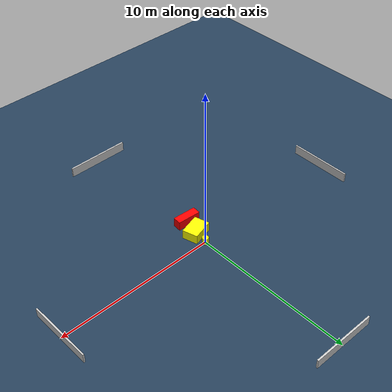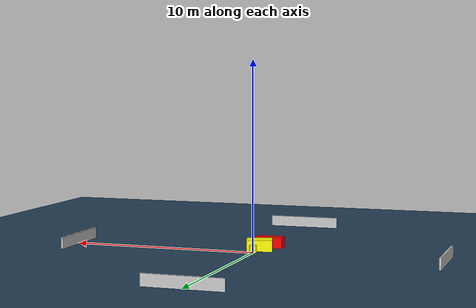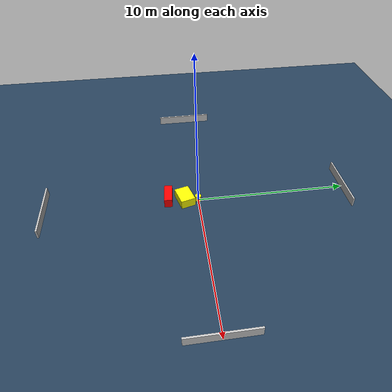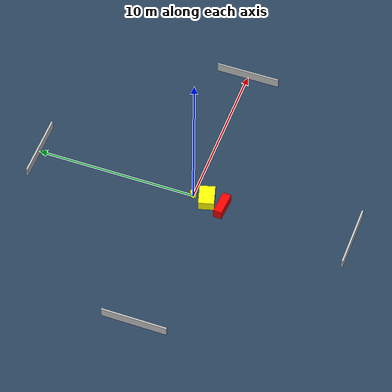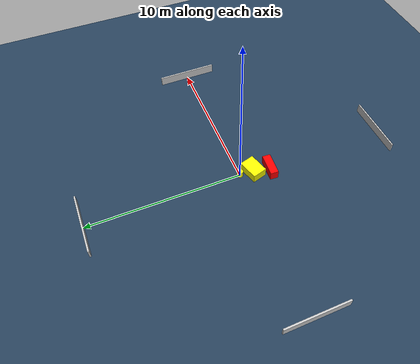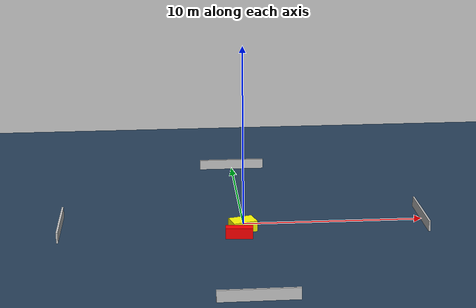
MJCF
<?xml version="1.0" ?>
<mujoco model="generated_environment">
  <option timestep="0.01" integrator="RK4" cone="elliptic"/>
  <default>
    <geom density="1"/>
  </default>
  <asset>
    <texture builtin="gradient" height="3072" name="skybox" rgb1="0.3 0.5 0.7" rgb2="0 0 0" type="skybox" width="512"/>
    <texture builtin="checker" height="300" name="groundplane" rgb1="0.2 0.3 0.4" rgb2="0.1 0.2 0.3" type="2d" width="300"/>
    <material name="groundplane" reflectance="0.2" texrepeat="5 5" texture="groundplane"/>
  </asset>
  <worldbody>
    <light dir="0 0 -1" directional="true" pos="0 0 1.5"/>
    <geom condim="3" friction="0.5 0.005 0.001" material="groundplane" name="floor" pos="0 0 0" size="0 0 0.05" type="plane"/>
    <body name="walls">
      <geom name="wall_1" condim="4" pos="-10.0 0.0 0.3" rgba="0.800000011920929 0.800000011920929 0.800000011920929 1.0" size="0.05 2.0 0.3" type="box"/>
      <geom name="wall_2" condim="4" pos="10.0 0.0 0.3" rgba="0.800000011920929 0.800000011920929 0.800000011920929 1.0" size="0.05 2.0 0.3" type="box"/>
      <geom name="wall_3" condim="4" pos="0.0 -10.0 0.3" rgba="0.800000011920929 0.800000011920929 0.800000011920929 1.0" size="2.0 0.05 0.3" type="box"/>
      <geom name="wall_4" condim="4" pos="0.0 10.0 0.3" rgba="0.800000011920929 0.800000011920929 0.800000011920929 1.0" size="2.0 0.05 0.3" type="box"/>
    </body>
    <body name="robot">
      <joint name="joint_x" type="slide" pos="0 0 0" axis="1 0 0"/>
      <joint name="joint_y" type="slide" pos="0 0 0" axis="0 1 0"/>
      <geom name="robot" type="cylinder" pos="0.0 0.0 0.2" size="0.2 0.2 0.0" mass="5.0" friction="1.0 0.005 0.0001" condim="4" rgba="1.0 1.0 0.0 1.0"/>
    </body>
    <body name="obstacle_1_movable">
      <geom name="obstacle_1_movable" condim="4" pos="-0.08233977824637634 -0.8725689467863402 0.3" euler="0 0 15.761216690020543" friction="0.0 0.005 0.001" rgba="1.0 1.0 0.0 1.0" size="0.672386423757328 0.48229584527120467 0.3" type="box" mass="0.1"/>
      <joint type="free"/>
    </body>
    <body name="obstacle_2_static">
      <geom name="obstacle_2_static" condim="4" pos="-0.34066516091362437 -1.948002552749343 0.3" euler="0 0 176.0715798545007" friction="0.0 0.005 0.001" rgba="1.0 0.0 0.0 1.0" size="0.7345690323296554 0.26111468254026293 0.3" type="box"/>
    </body>
  </worldbody>
  <actuator>
    <motor name="actuator_x" joint="joint_x" gear="1" ctrlrange="-1 1"/>
    <motor name="actuator_y" joint="joint_y" gear="1" ctrlrange="-1 1"/>
  </actuator>
</mujoco>
